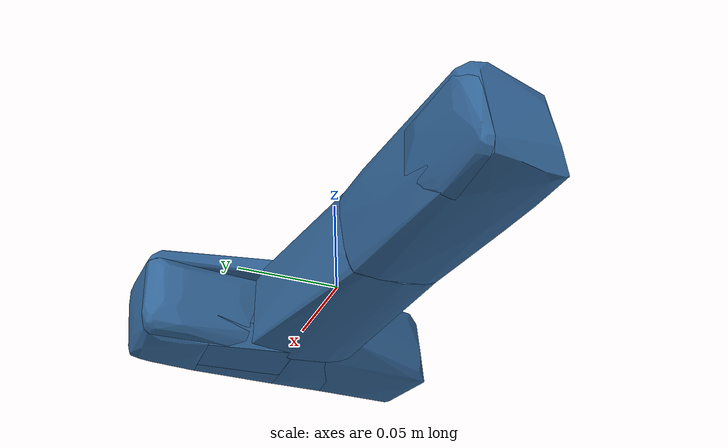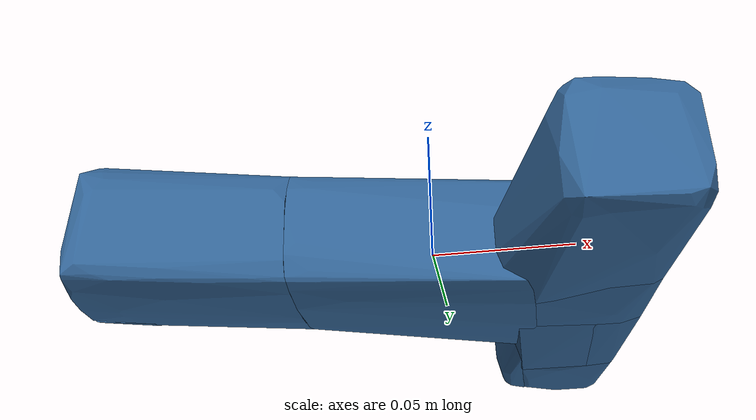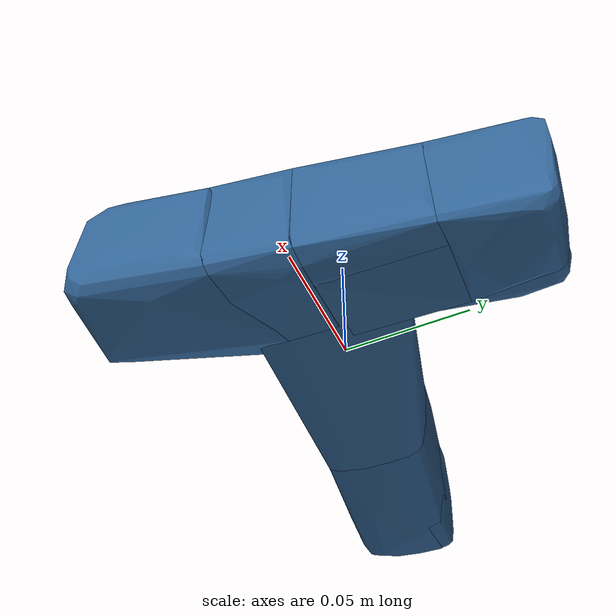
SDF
<?xml version='1.0' encoding='UTF-8'?>
<!-- This SDF was autogenerated by obj_to_drake_sdf.py -->
<sdf version="1.7">
  <model name="T_shape">
    <link name="T_shape">
      <inertial>
        <pose>0 0 0 0 0 0</pose>
        <mass>0.05</mass>
        <inertia>
          <ixx>6.8735587e-05</ixx>
          <iyy>0.00019265549</iyy>
          <izz>0.0002436282</izz>
          <ixy>-2.0761801e-05</ixy>
          <ixz>7.7738559e-06</ixz>
          <iyz>3.1377776e-06</iyz>
        </inertia>
      </inertial>
      <visual name="convex_0">
        <pose>0 0 0 0 0 0</pose>
        <geometry>
          <mesh>
            <uri>T_shape_convex_0.obj</uri>
          </mesh>
        </geometry>
        <material>
          <diffuse>0.19607843137254902 0.39215686274509803 0.5882352941176471 1</diffuse>
        </material>
      </visual>
      <collision name="convex_0_volume">
        <pose>0 0 0 0 0 0</pose>
        <geometry>
          <mesh>
            <uri>T_shape_convex_0.obj</uri>
          </mesh>
        </geometry>
        <drake:proximity_properties xmlns:drake="uri:drake">
          <drake:compliant_hydroelastic/>
          <drake:hydroelastic_modulus> 3.0e7 </drake:hydroelastic_modulus>
          <drake:mesh_resolution_hint> 0.02 </drake:mesh_resolution_hint>
          <drake:hunt_crossley_dissipation>10</drake:hunt_crossley_dissipation>
          <drake:mu_dynamic>0.3</drake:mu_dynamic>
        </drake:proximity_properties>
      </collision>
      <visual name="convex_1">
        <pose>0 0 0 0 0 0</pose>
        <geometry>
          <mesh>
            <uri>T_shape_convex_1.obj</uri>
          </mesh>
        </geometry>
        <material>
          <diffuse>0.19607843137254902 0.39215686274509803 0.5882352941176471 1</diffuse>
        </material>
      </visual>
      <collision name="convex_1_volume">
        <pose>0 0 0 0 0 0</pose>
        <geometry>
          <mesh>
            <uri>T_shape_convex_1.obj</uri>
          </mesh>
        </geometry>
        <drake:proximity_properties xmlns:drake="uri:drake">
          <drake:compliant_hydroelastic/>
          <drake:hydroelastic_modulus> 3.0e7 </drake:hydroelastic_modulus>
          <drake:mesh_resolution_hint> 0.02 </drake:mesh_resolution_hint>
          <drake:hunt_crossley_dissipation>10</drake:hunt_crossley_dissipation>
          <drake:mu_dynamic>0.3</drake:mu_dynamic>
        </drake:proximity_properties>
      </collision>
      <visual name="convex_2">
        <pose>0 0 0 0 0 0</pose>
        <geometry>
          <mesh>
            <uri>T_shape_convex_2.obj</uri>
          </mesh>
        </geometry>
        <material>
          <diffuse>0.19607843137254902 0.39215686274509803 0.5882352941176471 1</diffuse>
        </material>
      </visual>
      <collision name="convex_2_volume">
        <pose>0 0 0 0 0 0</pose>
        <geometry>
          <mesh>
            <uri>T_shape_convex_2.obj</uri>
          </mesh>
        </geometry>
        <drake:proximity_properties xmlns:drake="uri:drake">
          <drake:compliant_hydroelastic/>
          <drake:hydroelastic_modulus> 3.0e7 </drake:hydroelastic_modulus>
          <drake:mesh_resolution_hint> 0.02 </drake:mesh_resolution_hint>
          <drake:hunt_crossley_dissipation>10</drake:hunt_crossley_dissipation>
          <drake:mu_dynamic>0.3</drake:mu_dynamic>
        </drake:proximity_properties>
      </collision>
      <visual name="convex_3">
        <pose>0 0 0 0 0 0</pose>
        <geometry>
          <mesh>
            <uri>T_shape_convex_3.obj</uri>
          </mesh>
        </geometry>
        <material>
          <diffuse>0.19607843137254902 0.39215686274509803 0.5882352941176471 1</diffuse>
        </material>
      </visual>
      <collision name="convex_3_volume">
        <pose>0 0 0 0 0 0</pose>
        <geometry>
          <mesh>
            <uri>T_shape_convex_3.obj</uri>
          </mesh>
        </geometry>
        <drake:proximity_properties xmlns:drake="uri:drake">
          <drake:compliant_hydroelastic/>
          <drake:hydroelastic_modulus> 3.0e7 </drake:hydroelastic_modulus>
          <drake:mesh_resolution_hint> 0.02 </drake:mesh_resolution_hint>
          <drake:hunt_crossley_dissipation>10</drake:hunt_crossley_dissipation>
          <drake:mu_dynamic>0.3</drake:mu_dynamic>
        </drake:proximity_properties>
      </collision>
      <visual name="convex_4">
        <pose>0 0 0 0 0 0</pose>
        <geometry>
          <mesh>
            <uri>T_shape_convex_4.obj</uri>
          </mesh>
        </geometry>
        <material>
          <diffuse>0.19607843137254902 0.39215686274509803 0.5882352941176471 1</diffuse>
        </material>
      </visual>
      <collision name="convex_4_volume">
        <pose>0 0 0 0 0 0</pose>
        <geometry>
          <mesh>
            <uri>T_shape_convex_4.obj</uri>
          </mesh>
        </geometry>
        <drake:proximity_properties xmlns:drake="uri:drake">
          <drake:compliant_hydroelastic/>
          <drake:hydroelastic_modulus> 3.0e7 </drake:hydroelastic_modulus>
          <drake:mesh_resolution_hint> 0.02 </drake:mesh_resolution_hint>
          <drake:hunt_crossley_dissipation>10</drake:hunt_crossley_dissipation>
          <drake:mu_dynamic>0.3</drake:mu_dynamic>
        </drake:proximity_properties>
      </collision>
      <visual name="convex_5">
        <pose>0 0 0 0 0 0</pose>
        <geometry>
          <mesh>
            <uri>T_shape_convex_5.obj</uri>
          </mesh>
        </geometry>
        <material>
          <diffuse>0.19607843137254902 0.39215686274509803 0.5882352941176471 1</diffuse>
        </material>
      </visual>
      <collision name="convex_5_volume">
        <pose>0 0 0 0 0 0</pose>
        <geometry>
          <mesh>
            <uri>T_shape_convex_5.obj</uri>
          </mesh>
        </geometry>
        <drake:proximity_properties xmlns:drake="uri:drake">
          <drake:compliant_hydroelastic/>
          <drake:hydroelastic_modulus> 3.0e7 </drake:hydroelastic_modulus>
          <drake:mesh_resolution_hint> 0.02 </drake:mesh_resolution_hint>
          <drake:hunt_crossley_dissipation>10</drake:hunt_crossley_dissipation>
          <drake:mu_dynamic>0.3</drake:mu_dynamic>
        </drake:proximity_properties>
      </collision>
      <visual name="convex_6">
        <pose>0 0 0 0 0 0</pose>
        <geometry>
          <mesh>
            <uri>T_shape_convex_6.obj</uri>
          </mesh>
        </geometry>
        <material>
          <diffuse>0.19607843137254902 0.39215686274509803 0.5882352941176471 1</diffuse>
        </material>
      </visual>
      <collision name="convex_6_volume">
        <pose>0 0 0 0 0 0</pose>
        <geometry>
          <mesh>
            <uri>T_shape_convex_6.obj</uri>
          </mesh>
        </geometry>
        <drake:proximity_properties xmlns:drake="uri:drake">
          <drake:compliant_hydroelastic/>
          <drake:hydroelastic_modulus> 3.0e7 </drake:hydroelastic_modulus>
          <drake:mesh_resolution_hint> 0.02 </drake:mesh_resolution_hint>
          <drake:hunt_crossley_dissipation>10</drake:hunt_crossley_dissipation>
          <drake:mu_dynamic>0.3</drake:mu_dynamic>
        </drake:proximity_properties>
      </collision>
      <visual name="convex_7">
        <pose>0 0 0 0 0 0</pose>
        <geometry>
          <mesh>
            <uri>T_shape_convex_7.obj</uri>
          </mesh>
        </geometry>
        <material>
          <diffuse>0.19607843137254902 0.39215686274509803 0.5882352941176471 1</diffuse>
        </material>
      </visual>
      <collision name="convex_7_volume">
        <pose>0 0 0 0 0 0</pose>
        <geometry>
          <mesh>
            <uri>T_shape_convex_7.obj</uri>
          </mesh>
        </geometry>
        <drake:proximity_properties xmlns:drake="uri:drake">
          <drake:compliant_hydroelastic/>
          <drake:hydroelastic_modulus> 3.0e7 </drake:hydroelastic_modulus>
          <drake:mesh_resolution_hint> 0.02 </drake:mesh_resolution_hint>
          <drake:hunt_crossley_dissipation>10</drake:hunt_crossley_dissipation>
          <drake:mu_dynamic>0.3</drake:mu_dynamic>
        </drake:proximity_properties>
      </collision>
      <visual name="convex_8">
        <pose>0 0 0 0 0 0</pose>
        <geometry>
          <mesh>
            <uri>T_shape_convex_8.obj</uri>
          </mesh>
        </geometry>
        <material>
          <diffuse>0.19607843137254902 0.39215686274509803 0.5882352941176471 1</diffuse>
        </material>
      </visual>
      <collision name="convex_8_volume">
        <pose>0 0 0 0 0 0</pose>
        <geometry>
          <mesh>
            <uri>T_shape_convex_8.obj</uri>
          </mesh>
        </geometry>
        <drake:proximity_properties xmlns:drake="uri:drake">
          <drake:compliant_hydroelastic/>
          <drake:hydroelastic_modulus> 3.0e7 </drake:hydroelastic_modulus>
          <drake:mesh_resolution_hint> 0.02 </drake:mesh_resolution_hint>
          <drake:hunt_crossley_dissipation>10</drake:hunt_crossley_dissipation>
          <drake:mu_dynamic>0.3</drake:mu_dynamic>
        </drake:proximity_properties>
      </collision>
      <visual name="convex_9">
        <pose>0 0 0 0 0 0</pose>
        <geometry>
          <mesh>
            <uri>T_shape_convex_9.obj</uri>
          </mesh>
        </geometry>
        <material>
          <diffuse>0.19607843137254902 0.39215686274509803 0.5882352941176471 1</diffuse>
        </material>
      </visual>
      <collision name="convex_9_volume">
        <pose>0 0 0 0 0 0</pose>
        <geometry>
          <mesh>
            <uri>T_shape_convex_9.obj</uri>
          </mesh>
        </geometry>
        <drake:proximity_properties xmlns:drake="uri:drake">
          <drake:compliant_hydroelastic/>
          <drake:hydroelastic_modulus> 3.0e7 </drake:hydroelastic_modulus>
          <drake:mesh_resolution_hint> 0.02 </drake:mesh_resolution_hint>
          <drake:hunt_crossley_dissipation>10</drake:hunt_crossley_dissipation>
          <drake:mu_dynamic>0.3</drake:mu_dynamic>
        </drake:proximity_properties>
      </collision>
    </link>
  </model>
</sdf>
